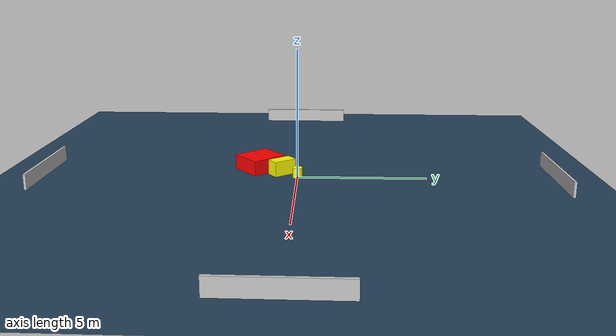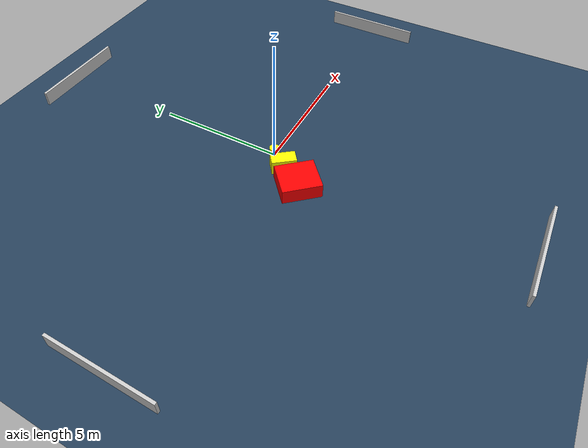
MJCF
<?xml version="1.0" ?>
<mujoco model="generated_environment">
  <option timestep="0.01" integrator="RK4" cone="elliptic"/>
  <default>
    <geom density="1"/>
  </default>
  <asset>
    <texture builtin="gradient" height="3072" name="skybox" rgb1="0.3 0.5 0.7" rgb2="0 0 0" type="skybox" width="512"/>
    <texture builtin="checker" height="300" name="groundplane" rgb1="0.2 0.3 0.4" rgb2="0.1 0.2 0.3" type="2d" width="300"/>
    <material name="groundplane" reflectance="0.2" texrepeat="5 5" texture="groundplane"/>
  </asset>
  <worldbody>
    <light dir="0 0 -1" directional="true" pos="0 0 1.5"/>
    <geom condim="3" friction="0.5 0.005 0.001" material="groundplane" name="floor" pos="0 0 0" size="0 0 0.05" type="plane"/>
    <body name="walls">
      <geom name="wall_1" condim="4" pos="-10.0 0.0 0.3" rgba="0.800000011920929 0.800000011920929 0.800000011920929 1.0" size="0.05 2.0 0.3" type="box"/>
      <geom name="wall_2" condim="4" pos="10.0 0.0 0.3" rgba="0.800000011920929 0.800000011920929 0.800000011920929 1.0" size="0.05 2.0 0.3" type="box"/>
      <geom name="wall_3" condim="4" pos="0.0 -10.0 0.3" rgba="0.800000011920929 0.800000011920929 0.800000011920929 1.0" size="2.0 0.05 0.3" type="box"/>
      <geom name="wall_4" condim="4" pos="0.0 10.0 0.3" rgba="0.800000011920929 0.800000011920929 0.800000011920929 1.0" size="2.0 0.05 0.3" type="box"/>
    </body>
    <body name="robot">
      <joint name="joint_x" type="slide" pos="0 0 0" axis="1 0 0"/>
      <joint name="joint_y" type="slide" pos="0 0 0" axis="0 1 0"/>
      <geom name="robot" type="cylinder" pos="0.0 0.0 0.2" size="0.2 0.2 0.0" mass="5.0" friction="1.0 0.005 0.0001" condim="4" rgba="1.0 1.0 0.0 1.0"/>
    </body>
    <body name="obstacle_1_movable">
      <geom name="obstacle_1_movable" condim="4" pos="-0.4578584875314618 -0.6311961076464819 0.3" euler="0 0 307.75649534157907" friction="0.0 0.005 0.001" rgba="1.0 1.0 0.0 1.0" size="0.47968628919703266 0.25651085764636905 0.3" type="box" mass="0.1"/>
      <joint type="free"/>
    </body>
    <body name="obstacle_2_static">
      <geom name="obstacle_2_static" condim="4" pos="-1.0389961033567454 -1.5524764479266575 0.3" euler="0 0 221.67684754575887" friction="0.0 0.005 0.001" rgba="1.0 0.0 0.0 1.0" size="0.6643577428458805 0.7547689196097433 0.3" type="box"/>
    </body>
  </worldbody>
  <actuator>
    <motor name="actuator_x" joint="joint_x" gear="1" ctrlrange="-1 1"/>
    <motor name="actuator_y" joint="joint_y" gear="1" ctrlrange="-1 1"/>
  </actuator>
</mujoco>
